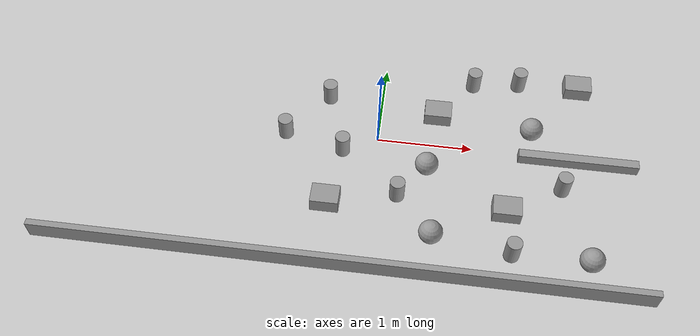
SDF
<sdf version="1.6">
 <world name="default">
  <model name="ground_plane">
   <static>1</static>
   <link name="link">
    <collision name="collision">
     <geometry><plane><normal>0 0 1</normal><size>100 100</size></plane></geometry>
     <surface>
      <contact><collide_bitmask>65535</collide_bitmask></contact>
      <friction><ode><mu>100</mu><mu2>50</mu2></ode></friction>
     </surface>
    </collision>
    <visual name="visual">
     <cast_shadows>0</cast_shadows>
     <geometry><plane><normal>0 0 1</normal><size>100 100</size></plane></geometry>
     <material>
      <script><uri>file://media/materials/scripts/gazebo.material</uri><name>Gazebo/Grey</name></script>
     </material>
    </visual>
   </link>
  </model>
  <model name="wall">
   <link name="wall::link">
    <inertial>
     <mass>1</mass>
     <inertia>
      <ixx>0.166667</ixx>
      <ixy>0</ixy>
      <ixz>0</ixz>
      <iyy>0.166667</iyy>
      <iyz>0</iyz>
      <izz>0.166667</izz>
     </inertia>
    </inertial>
    <visual name="visual">
     <geometry><box><size>6.06185 0.064282 0.203764</size></box></geometry>
     <material>
      <script><name>Gazebo/Grey</name><uri>file://media/materials/scripts/gazebo.material</uri></script>
     </material>
    </visual>
    <collision name="collision">
     <geometry><box><size>6.06185 0.064282 0.203764</size></box></geometry>
     <surface>
      <friction>
       <ode><mu>1</mu><mu2>1</mu2><fdir1>0 0 0</fdir1><slip1>0</slip1><slip2>0</slip2></ode>
       <torsional>
        <coefficient>1</coefficient>
        <patch_radius>0</patch_radius>
        <surface_radius>0</surface_radius>
        <use_patch_radius>1</use_patch_radius>
        <ode><slip>0</slip></ode>
       </torsional>
      </friction>
      <bounce><restitution_coefficient>0</restitution_coefficient><threshold>1e+06</threshold></bounce>
      <contact>
       <collide_without_contact>0</collide_without_contact>
       <collide_without_contact_bitmask>1</collide_without_contact_bitmask>
       <collide_bitmask>1</collide_bitmask>
       <ode>
        <soft_cfm>0</soft_cfm>
        <soft_erp>0.2</soft_erp>
        <kp>1e+13</kp>
        <kd>1</kd>
        <max_vel>0.01</max_vel>
        <min_depth>0</min_depth>
       </ode>
       <bullet>
        <split_impulse>1</split_impulse>
        <split_impulse_penetration_threshold>-0.01</split_impulse_penetration_threshold>
        <soft_cfm>0</soft_cfm>
        <soft_erp>0.2</soft_erp>
        <kp>1e+13</kp>
        <kd>1</kd>
       </bullet>
      </contact>
     </surface>
    </collision>
   </link>
   <static>1</static>
   <pose>-0.251992 -1.59999 0.089327 0.002776 -0.00063 0.000788</pose>
  </model>
  <model name="square_obstacle">
   <link name="link">
    <inertial>
     <mass>1</mass>
     <inertia>
      <ixx>0.166667</ixx>
      <ixy>0</ixy>
      <ixz>0</ixz>
      <iyy>0.166667</iyy>
      <iyz>0</iyz>
      <izz>0.166667</izz>
     </inertia>
    </inertial>
    <visual name="visual">
     <geometry><box><size>0.287479 0.224054 0.165392</size></box></geometry>
     <material>
      <script><name>Gazebo/Grey</name><uri>file://media/materials/scripts/gazebo.material</uri></script>
     </material>
    </visual>
    <collision name="collision">
     <geometry><box><size>0.287479 0.224054 0.165392</size></box></geometry>
     <surface>
      <friction>
       <ode><mu>1</mu><mu2>1</mu2><fdir1>0 0 0</fdir1><slip1>0</slip1><slip2>0</slip2></ode>
       <torsional>
        <coefficient>1</coefficient>
        <patch_radius>0</patch_radius>
        <surface_radius>0</surface_radius>
        <use_patch_radius>1</use_patch_radius>
        <ode><slip>0</slip></ode>
       </torsional>
      </friction>
      <bounce><restitution_coefficient>0</restitution_coefficient><threshold>1e+06</threshold></bounce>
      <contact>
       <collide_without_contact>0</collide_without_contact>
       <collide_without_contact_bitmask>1</collide_without_contact_bitmask>
       <collide_bitmask>1</collide_bitmask>
       <ode>
        <soft_cfm>0</soft_cfm>
        <soft_erp>0.2</soft_erp>
        <kp>1e+13</kp>
        <kd>1</kd>
        <max_vel>0.01</max_vel>
        <min_depth>0</min_depth>
       </ode>
       <bullet>
        <split_impulse>1</split_impulse>
        <split_impulse_penetration_threshold>-0.01</split_impulse_penetration_threshold>
        <soft_cfm>0</soft_cfm>
        <soft_erp>0.2</soft_erp>
        <kp>1e+13</kp>
        <kd>1</kd>
       </bullet>
      </contact>
     </surface>
    </collision>
   </link>
   <static>1</static>
   <pose>-0.448802 -0.865107 0.069671 0 -0 0</pose>
  </model>
  <model name="square_obstacle_clone_4">
   <link name="link">
    <inertial>
     <mass>1</mass>
     <inertia>
      <ixx>0.166667</ixx>
      <ixy>0</ixy>
      <ixz>0</ixz>
      <iyy>0.166667</iyy>
      <iyz>0</iyz>
      <izz>0.166667</izz>
     </inertia>
    </inertial>
    <visual name="visual">
     <geometry><box><size>0.287479 0.224054 0.165392</size></box></geometry>
     <material>
      <script><name>Gazebo/Grey</name><uri>file://media/materials/scripts/gazebo.material</uri></script>
     </material>
    </visual>
    <collision name="collision">
     <geometry><box><size>0.287479 0.224054 0.165392</size></box></geometry>
     <surface>
      <friction>
       <ode><mu>1</mu><mu2>1</mu2><fdir1>0 0 0</fdir1><slip1>0</slip1><slip2>0</slip2></ode>
       <torsional>
        <coefficient>1</coefficient>
        <patch_radius>0</patch_radius>
        <surface_radius>0</surface_radius>
        <use_patch_radius>1</use_patch_radius>
        <ode><slip>0</slip></ode>
       </torsional>
      </friction>
      <bounce><restitution_coefficient>0</restitution_coefficient><threshold>1e+06</threshold></bounce>
      <contact>
       <collide_without_contact>0</collide_without_contact>
       <collide_without_contact_bitmask>1</collide_without_contact_bitmask>
       <collide_bitmask>1</collide_bitmask>
       <ode>
        <soft_cfm>0</soft_cfm>
        <soft_erp>0.2</soft_erp>
        <kp>1e+13</kp>
        <kd>1</kd>
        <max_vel>0.01</max_vel>
        <min_depth>0</min_depth>
       </ode>
       <bullet>
        <split_impulse>1</split_impulse>
        <split_impulse_penetration_threshold>-0.01</split_impulse_penetration_threshold>
        <soft_cfm>0</soft_cfm>
        <soft_erp>0.2</soft_erp>
        <kp>1e+13</kp>
        <kd>1</kd>
       </bullet>
      </contact>
     </surface>
    </collision>
   </link>
   <static>1</static>
   <pose>1.37279 -0.76147 0.055043 0 -0 0</pose>
  </model>
  <model name="sphere_obstacles_clone_2">
   <link name="sphere_obstacles_clone_2::link">
    <inertial>
     <mass>1</mass>
     <inertia><ixx>0.1</ixx><ixy>0</ixy><ixz>0</ixz><iyy>0.1</iyy><iyz>0</iyz><izz>0.1</izz></inertia>
    </inertial>
    <visual name="visual">
     <geometry><sphere><radius>0.121078</radius></sphere></geometry>
     <material>
      <script><name>Gazebo/Grey</name><uri>file://media/materials/scripts/gazebo.material</uri></script>
     </material>
    </visual>
    <collision name="collision">
     <geometry><sphere><radius>0.121078</radius></sphere></geometry>
     <surface>
      <friction>
       <ode><mu>1</mu><mu2>1</mu2><fdir1>0 0 0</fdir1><slip1>0</slip1><slip2>0</slip2></ode>
       <torsional>
        <coefficient>1</coefficient>
        <patch_radius>0</patch_radius>
        <surface_radius>0</surface_radius>
        <use_patch_radius>1</use_patch_radius>
        <ode><slip>0</slip></ode>
       </torsional>
      </friction>
      <bounce><restitution_coefficient>0</restitution_coefficient><threshold>1e+06</threshold></bounce>
      <contact>
       <collide_without_contact>0</collide_without_contact>
       <collide_without_contact_bitmask>1</collide_without_contact_bitmask>
       <collide_bitmask>1</collide_bitmask>
       <ode>
        <soft_cfm>0</soft_cfm>
        <soft_erp>0.2</soft_erp>
        <kp>1e+13</kp>
        <kd>1</kd>
        <max_vel>0.01</max_vel>
        <min_depth>0</min_depth>
       </ode>
       <bullet>
        <split_impulse>1</split_impulse>
        <split_impulse_penetration_threshold>-0.01</split_impulse_penetration_threshold>
        <soft_cfm>0</soft_cfm>
        <soft_erp>0.2</soft_erp>
        <kp>1e+13</kp>
        <kd>1</kd>
       </bullet>
      </contact>
     </surface>
    </collision>
   </link>
   <static>1</static>
   <pose>1.62312 0.3049 0.0728 0 -0 0</pose>
  </model>
  <model name="sphere_obstacles_clone_2_clone_3">
   <link name="sphere_obstacles_clone_2::link">
    <inertial>
     <mass>1</mass>
     <inertia><ixx>0.1</ixx><ixy>0</ixy><ixz>0</ixz><iyy>0.1</iyy><iyz>0</iyz><izz>0.1</izz></inertia>
    </inertial>
    <visual name="visual">
     <geometry><sphere><radius>0.121078</radius></sphere></geometry>
     <material>
      <script><name>Gazebo/Grey</name><uri>file://media/materials/scripts/gazebo.material</uri></script>
     </material>
    </visual>
    <collision name="collision">
     <geometry><sphere><radius>0.121078</radius></sphere></geometry>
     <surface>
      <friction>
       <ode><mu>1</mu><mu2>1</mu2><fdir1>0 0 0</fdir1><slip1>0</slip1><slip2>0</slip2></ode>
       <torsional>
        <coefficient>1</coefficient>
        <patch_radius>0</patch_radius>
        <surface_radius>0</surface_radius>
        <use_patch_radius>1</use_patch_radius>
        <ode><slip>0</slip></ode>
       </torsional>
      </friction>
      <bounce><restitution_coefficient>0</restitution_coefficient><threshold>1e+06</threshold></bounce>
      <contact>
       <collide_without_contact>0</collide_without_contact>
       <collide_without_contact_bitmask>1</collide_without_contact_bitmask>
       <collide_bitmask>1</collide_bitmask>
       <ode>
        <soft_cfm>0</soft_cfm>
        <soft_erp>0.2</soft_erp>
        <kp>1e+13</kp>
        <kd>1</kd>
        <max_vel>0.01</max_vel>
        <min_depth>0</min_depth>
       </ode>
       <bullet>
        <split_impulse>1</split_impulse>
        <split_impulse_penetration_threshold>-0.01</split_impulse_penetration_threshold>
        <soft_cfm>0</soft_cfm>
        <soft_erp>0.2</soft_erp>
        <kp>1e+13</kp>
        <kd>1</kd>
       </bullet>
      </contact>
     </surface>
    </collision>
   </link>
   <static>1</static>
   <pose>0.539291 -0.300448 0.0728 0 -0 0</pose>
  </model>
  <model name="sphere_obstacles_clone_2_clone_5">
   <link name="sphere_obstacles_clone_2::link">
    <inertial>
     <mass>1</mass>
     <inertia><ixx>0.1</ixx><ixy>0</ixy><ixz>0</ixz><iyy>0.1</iyy><iyz>0</iyz><izz>0.1</izz></inertia>
    </inertial>
    <visual name="visual">
     <geometry><sphere><radius>0.121078</radius></sphere></geometry>
     <material>
      <script><name>Gazebo/Grey</name><uri>file://media/materials/scripts/gazebo.material</uri></script>
     </material>
    </visual>
    <collision name="collision">
     <geometry><sphere><radius>0.121078</radius></sphere></geometry>
     <surface>
      <friction>
       <ode><mu>1</mu><mu2>1</mu2><fdir1>0 0 0</fdir1><slip1>0</slip1><slip2>0</slip2></ode>
       <torsional>
        <coefficient>1</coefficient>
        <patch_radius>0</patch_radius>
        <surface_radius>0</surface_radius>
        <use_patch_radius>1</use_patch_radius>
        <ode><slip>0</slip></ode>
       </torsional>
      </friction>
      <bounce><restitution_coefficient>0</restitution_coefficient><threshold>1e+06</threshold></bounce>
      <contact>
       <collide_without_contact>0</collide_without_contact>
       <collide_without_contact_bitmask>1</collide_without_contact_bitmask>
       <collide_bitmask>1</collide_bitmask>
       <ode>
        <soft_cfm>0</soft_cfm>
        <soft_erp>0.2</soft_erp>
        <kp>1e+13</kp>
        <kd>1</kd>
        <max_vel>0.01</max_vel>
        <min_depth>0</min_depth>
       </ode>
       <bullet>
        <split_impulse>1</split_impulse>
        <split_impulse_penetration_threshold>-0.01</split_impulse_penetration_threshold>
        <soft_cfm>0</soft_cfm>
        <soft_erp>0.2</soft_erp>
        <kp>1e+13</kp>
        <kd>1</kd>
       </bullet>
      </contact>
     </surface>
    </collision>
   </link>
   <static>1</static>
   <pose>2.19214 -1.24737 0.0728 0 -0 0</pose>
  </model>
  <model name="square_obstacle_clone_4_clone_clone_1">
   <link name="link">
    <inertial>
     <mass>1</mass>
     <inertia>
      <ixx>0.166667</ixx>
      <ixy>0</ixy>
      <ixz>0</ixz>
      <iyy>0.166667</iyy>
      <iyz>0</iyz>
      <izz>0.166667</izz>
     </inertia>
    </inertial>
    <visual name="visual">
     <geometry><box><size>0.287479 0.224054 0.165392</size></box></geometry>
     <material>
      <script><name>Gazebo/Grey</name><uri>file://media/materials/scripts/gazebo.material</uri></script>
     </material>
    </visual>
    <collision name="collision">
     <geometry><box><size>0.287479 0.224054 0.165392</size></box></geometry>
     <surface>
      <friction>
       <ode><mu>1</mu><mu2>1</mu2><fdir1>0 0 0</fdir1><slip1>0</slip1><slip2>0</slip2></ode>
       <torsional>
        <coefficient>1</coefficient>
        <patch_radius>0</patch_radius>
        <surface_radius>0</surface_radius>
        <use_patch_radius>1</use_patch_radius>
        <ode><slip>0</slip></ode>
       </torsional>
      </friction>
      <bounce><restitution_coefficient>0</restitution_coefficient><threshold>1e+06</threshold></bounce>
      <contact>
       <collide_without_contact>0</collide_without_contact>
       <collide_without_contact_bitmask>1</collide_without_contact_bitmask>
       <collide_bitmask>1</collide_bitmask>
       <ode>
        <soft_cfm>0</soft_cfm>
        <soft_erp>0.2</soft_erp>
        <kp>1e+13</kp>
        <kd>1</kd>
        <max_vel>0.01</max_vel>
        <min_depth>0</min_depth>
       </ode>
       <bullet>
        <split_impulse>1</split_impulse>
        <split_impulse_penetration_threshold>-0.01</split_impulse_penetration_threshold>
        <soft_cfm>0</soft_cfm>
        <soft_erp>0.2</soft_erp>
        <kp>1e+13</kp>
        <kd>1</kd>
       </bullet>
      </contact>
     </surface>
    </collision>
   </link>
   <static>1</static>
   <pose>0.613197 0.412823 0.055043 0 -0 0</pose>
  </model>
  <model name="square_obstacle_clone_4_clone_clone_3">
   <link name="link">
    <inertial>
     <mass>1</mass>
     <inertia>
      <ixx>0.166667</ixx>
      <ixy>0</ixy>
      <ixz>0</ixz>
      <iyy>0.166667</iyy>
      <iyz>0</iyz>
      <izz>0.166667</izz>
     </inertia>
    </inertial>
    <visual name="visual">
     <geometry><box><size>0.287479 0.224054 0.165392</size></box></geometry>
     <material>
      <script><name>Gazebo/Grey</name><uri>file://media/materials/scripts/gazebo.material</uri></script>
     </material>
    </visual>
    <collision name="collision">
     <geometry><box><size>0.287479 0.224054 0.165392</size></box></geometry>
     <surface>
      <friction>
       <ode><mu>1</mu><mu2>1</mu2><fdir1>0 0 0</fdir1><slip1>0</slip1><slip2>0</slip2></ode>
       <torsional>
        <coefficient>1</coefficient>
        <patch_radius>0</patch_radius>
        <surface_radius>0</surface_radius>
        <use_patch_radius>1</use_patch_radius>
        <ode><slip>0</slip></ode>
       </torsional>
      </friction>
      <bounce><restitution_coefficient>0</restitution_coefficient><threshold>1e+06</threshold></bounce>
      <contact>
       <collide_without_contact>0</collide_without_contact>
       <collide_without_contact_bitmask>1</collide_without_contact_bitmask>
       <collide_bitmask>1</collide_bitmask>
       <ode>
        <soft_cfm>0</soft_cfm>
        <soft_erp>0.2</soft_erp>
        <kp>1e+13</kp>
        <kd>1</kd>
        <max_vel>0.01</max_vel>
        <min_depth>0</min_depth>
       </ode>
       <bullet>
        <split_impulse>1</split_impulse>
        <split_impulse_penetration_threshold>-0.01</split_impulse_penetration_threshold>
        <soft_cfm>0</soft_cfm>
        <soft_erp>0.2</soft_erp>
        <kp>1e+13</kp>
        <kd>1</kd>
       </bullet>
      </contact>
     </surface>
    </collision>
   </link>
   <static>1</static>
   <pose>2.13153 0.985228 0.055043 0 -0 0</pose>
  </model>
  <model name="cylinder_obstacles_clone_0">
   <link name="link">
    <inertial>
     <mass>1</mass>
     <inertia><ixx>0.145833</ixx><ixy>0</ixy><ixz>0</ixz><iyy>0.145833</iyy><iyz>0</iyz><izz>0.125</izz></inertia>
    </inertial>
    <visual name="visual">
     <geometry><cylinder><radius>0.076548</radius><length>0.26008</length></cylinder></geometry>
     <material>
      <script><name>Gazebo/Grey</name><uri>file://media/materials/scripts/gazebo.material</uri></script>
     </material>
    </visual>
    <collision name="collision">
     <geometry><cylinder><radius>0.076548</radius><length>0.26008</length></cylinder></geometry>
     <surface>
      <friction>
       <ode><mu>1</mu><mu2>1</mu2><fdir1>0 0 0</fdir1><slip1>0</slip1><slip2>0</slip2></ode>
       <torsional>
        <coefficient>1</coefficient>
        <patch_radius>0</patch_radius>
        <surface_radius>0</surface_radius>
        <use_patch_radius>1</use_patch_radius>
        <ode><slip>0</slip></ode>
       </torsional>
      </friction>
      <bounce><restitution_coefficient>0</restitution_coefficient><threshold>1e+06</threshold></bounce>
      <contact>
       <collide_without_contact>0</collide_without_contact>
       <collide_without_contact_bitmask>1</collide_without_contact_bitmask>
       <collide_bitmask>1</collide_bitmask>
       <ode>
        <soft_cfm>0</soft_cfm>
        <soft_erp>0.2</soft_erp>
        <kp>1e+13</kp>
        <kd>1</kd>
        <max_vel>0.01</max_vel>
        <min_depth>0</min_depth>
       </ode>
       <bullet>
        <split_impulse>1</split_impulse>
        <split_impulse_penetration_threshold>-0.01</split_impulse_penetration_threshold>
        <soft_cfm>0</soft_cfm>
        <soft_erp>0.2</soft_erp>
        <kp>1e+13</kp>
        <kd>1</kd>
       </bullet>
      </contact>
     </surface>
    </collision>
   </link>
   <static>1</static>
   <pose>-0.584571 0.519777 0.110032 0 -0 0</pose>
  </model>
  <model name="cylinder_obstacles_clone_3">
   <link name="link">
    <inertial>
     <mass>1</mass>
     <inertia><ixx>0.145833</ixx><ixy>0</ixy><ixz>0</ixz><iyy>0.145833</iyy><iyz>0</iyz><izz>0.125</izz></inertia>
    </inertial>
    <visual name="visual">
     <geometry><cylinder><radius>0.076548</radius><length>0.26008</length></cylinder></geometry>
     <material>
      <script><name>Gazebo/Grey</name><uri>file://media/materials/scripts/gazebo.material</uri></script>
     </material>
    </visual>
    <collision name="collision">
     <geometry><cylinder><radius>0.076548</radius><length>0.26008</length></cylinder></geometry>
     <surface>
      <friction>
       <ode><mu>1</mu><mu2>1</mu2><fdir1>0 0 0</fdir1><slip1>0</slip1><slip2>0</slip2></ode>
       <torsional>
        <coefficient>1</coefficient>
        <patch_radius>0</patch_radius>
        <surface_radius>0</surface_radius>
        <use_patch_radius>1</use_patch_radius>
        <ode><slip>0</slip></ode>
       </torsional>
      </friction>
      <bounce><restitution_coefficient>0</restitution_coefficient><threshold>1e+06</threshold></bounce>
      <contact>
       <collide_without_contact>0</collide_without_contact>
       <collide_without_contact_bitmask>1</collide_without_contact_bitmask>
       <collide_bitmask>1</collide_bitmask>
       <ode>
        <soft_cfm>0</soft_cfm>
        <soft_erp>0.2</soft_erp>
        <kp>1e+13</kp>
        <kd>1</kd>
        <max_vel>0.01</max_vel>
        <min_depth>0</min_depth>
       </ode>
       <bullet>
        <split_impulse>1</split_impulse>
        <split_impulse_penetration_threshold>-0.01</split_impulse_penetration_threshold>
        <soft_cfm>0</soft_cfm>
        <soft_erp>0.2</soft_erp>
        <kp>1e+13</kp>
        <kd>1</kd>
       </bullet>
      </contact>
     </surface>
    </collision>
   </link>
   <static>1</static>
   <pose>0.983823 0.898585 0.110032 0 -0 0</pose>
  </model>
  <model name="cylinder_obstacles_clone_4">
   <link name="link">
    <inertial>
     <mass>1</mass>
     <inertia><ixx>0.145833</ixx><ixy>0</ixy><ixz>0</ixz><iyy>0.145833</iyy><iyz>0</iyz><izz>0.125</izz></inertia>
    </inertial>
    <visual name="visual">
     <geometry><cylinder><radius>0.076548</radius><length>0.26008</length></cylinder></geometry>
     <material>
      <script><name>Gazebo/Grey</name><uri>file://media/materials/scripts/gazebo.material</uri></script>
     </material>
    </visual>
    <collision name="collision">
     <geometry><cylinder><radius>0.076548</radius><length>0.26008</length></cylinder></geometry>
     <surface>
      <friction>
       <ode><mu>1</mu><mu2>1</mu2><fdir1>0 0 0</fdir1><slip1>0</slip1><slip2>0</slip2></ode>
       <torsional>
        <coefficient>1</coefficient>
        <patch_radius>0</patch_radius>
        <surface_radius>0</surface_radius>
        <use_patch_radius>1</use_patch_radius>
        <ode><slip>0</slip></ode>
       </torsional>
      </friction>
      <bounce><restitution_coefficient>0</restitution_coefficient><threshold>1e+06</threshold></bounce>
      <contact>
       <collide_without_contact>0</collide_without_contact>
       <collide_without_contact_bitmask>1</collide_without_contact_bitmask>
       <collide_bitmask>1</collide_bitmask>
       <ode>
        <soft_cfm>0</soft_cfm>
        <soft_erp>0.2</soft_erp>
        <kp>1e+13</kp>
        <kd>1</kd>
        <max_vel>0.01</max_vel>
        <min_depth>0</min_depth>
       </ode>
       <bullet>
        <split_impulse>1</split_impulse>
        <split_impulse_penetration_threshold>-0.01</split_impulse_penetration_threshold>
        <soft_cfm>0</soft_cfm>
        <soft_erp>0.2</soft_erp>
        <kp>1e+13</kp>
        <kd>1</kd>
       </bullet>
      </contact>
     </surface>
    </collision>
   </link>
   <static>1</static>
   <pose>1.9338 -0.420018 0.110032 0 -0 0</pose>
  </model>
  <model name="cylinder_obstacles_clone_9">
   <link name="link">
    <inertial>
     <mass>1</mass>
     <inertia><ixx>0.145833</ixx><ixy>0</ixy><ixz>0</ixz><iyy>0.145833</iyy><iyz>0</iyz><izz>0.125</izz></inertia>
    </inertial>
    <visual name="visual">
     <geometry><cylinder><radius>0.076548</radius><length>0.26008</length></cylinder></geometry>
     <material>
      <script><name>Gazebo/Grey</name><uri>file://media/materials/scripts/gazebo.material</uri></script>
     </material>
    </visual>
    <collision name="collision">
     <geometry><cylinder><radius>0.076548</radius><length>0.26008</length></cylinder></geometry>
     <surface>
      <friction>
       <ode><mu>1</mu><mu2>1</mu2><fdir1>0 0 0</fdir1><slip1>0</slip1><slip2>0</slip2></ode>
       <torsional>
        <coefficient>1</coefficient>
        <patch_radius>0</patch_radius>
        <surface_radius>0</surface_radius>
        <use_patch_radius>1</use_patch_radius>
        <ode><slip>0</slip></ode>
       </torsional>
      </friction>
      <bounce><restitution_coefficient>0</restitution_coefficient><threshold>1e+06</threshold></bounce>
      <contact>
       <collide_without_contact>0</collide_without_contact>
       <collide_without_contact_bitmask>1</collide_without_contact_bitmask>
       <collide_bitmask>1</collide_bitmask>
       <ode>
        <soft_cfm>0</soft_cfm>
        <soft_erp>0.2</soft_erp>
        <kp>1e+13</kp>
        <kd>1</kd>
        <max_vel>0.01</max_vel>
        <min_depth>0</min_depth>
       </ode>
       <bullet>
        <split_impulse>1</split_impulse>
        <split_impulse_penetration_threshold>-0.01</split_impulse_penetration_threshold>
        <soft_cfm>0</soft_cfm>
        <soft_erp>0.2</soft_erp>
        <kp>1e+13</kp>
        <kd>1</kd>
       </bullet>
      </contact>
     </surface>
    </collision>
   </link>
   <static>1</static>
   <pose>-0.991495 -0.030722 0.110032 0 -0 0</pose>
  </model>
  <model name="long_obstacle_clone_0">
   <link name="link">
    <inertial>
     <mass>1</mass>
     <inertia>
      <ixx>0.166667</ixx>
      <ixy>0</ixy>
      <ixz>0</ixz>
      <iyy>0.166667</iyy>
      <iyz>0</iyz>
      <izz>0.166667</izz>
     </inertia>
    </inertial>
    <visual name="visual">
     <geometry><box><size>1.23514 0.097707 0.121659</size></box></geometry>
     <material>
      <script><name>Gazebo/Grey</name><uri>file://media/materials/scripts/gazebo.material</uri></script>
     </material>
    </visual>
    <collision name="collision">
     <geometry><box><size>1.23514 0.097707 0.121659</size></box></geometry>
     <surface>
      <friction>
       <ode><mu>1</mu><mu2>1</mu2><fdir1>0 0 0</fdir1><slip1>0</slip1><slip2>0</slip2></ode>
       <torsional>
        <coefficient>1</coefficient>
        <patch_radius>0</patch_radius>
        <surface_radius>0</surface_radius>
        <use_patch_radius>1</use_patch_radius>
        <ode><slip>0</slip></ode>
       </torsional>
      </friction>
      <bounce><restitution_coefficient>0</restitution_coefficient><threshold>1e+06</threshold></bounce>
      <contact>
       <collide_without_contact>0</collide_without_contact>
       <collide_without_contact_bitmask>1</collide_without_contact_bitmask>
       <collide_bitmask>1</collide_bitmask>
       <ode>
        <soft_cfm>0</soft_cfm>
        <soft_erp>0.2</soft_erp>
        <kp>1e+13</kp>
        <kd>1</kd>
        <max_vel>0.01</max_vel>
        <min_depth>0</min_depth>
       </ode>
       <bullet>
        <split_impulse>1</split_impulse>
        <split_impulse_penetration_threshold>-0.01</split_impulse_penetration_threshold>
        <soft_cfm>0</soft_cfm>
        <soft_erp>0.2</soft_erp>
        <kp>1e+13</kp>
        <kd>1</kd>
       </bullet>
      </contact>
     </surface>
    </collision>
   </link>
   <static>1</static>
   <pose>2.10308 -0.053252 0.044707 0 -0 0</pose>
  </model>
  <model name="cylinder_obstacles_clone_3_clone">
   <link name="link">
    <inertial>
     <mass>1</mass>
     <inertia><ixx>0.145833</ixx><ixy>0</ixy><ixz>0</ixz><iyy>0.145833</iyy><iyz>0</iyz><izz>0.125</izz></inertia>
    </inertial>
    <visual name="visual">
     <geometry><cylinder><radius>0.076548</radius><length>0.26008</length></cylinder></geometry>
     <material>
      <script><name>Gazebo/Grey</name><uri>file://media/materials/scripts/gazebo.material</uri></script>
     </material>
    </visual>
    <collision name="collision">
     <geometry><cylinder><radius>0.076548</radius><length>0.26008</length></cylinder></geometry>
     <surface>
      <friction>
       <ode><mu>1</mu><mu2>1</mu2><fdir1>0 0 0</fdir1><slip1>0</slip1><slip2>0</slip2></ode>
       <torsional>
        <coefficient>1</coefficient>
        <patch_radius>0</patch_radius>
        <surface_radius>0</surface_radius>
        <use_patch_radius>1</use_patch_radius>
        <ode><slip>0</slip></ode>
       </torsional>
      </friction>
      <bounce><restitution_coefficient>0</restitution_coefficient><threshold>1e+06</threshold></bounce>
      <contact>
       <collide_without_contact>0</collide_without_contact>
       <collide_without_contact_bitmask>1</collide_without_contact_bitmask>
       <collide_bitmask>1</collide_bitmask>
       <ode>
        <soft_cfm>0</soft_cfm>
        <soft_erp>0.2</soft_erp>
        <kp>1e+13</kp>
        <kd>1</kd>
        <max_vel>0.01</max_vel>
        <min_depth>0</min_depth>
       </ode>
       <bullet>
        <split_impulse>1</split_impulse>
        <split_impulse_penetration_threshold>-0.01</split_impulse_penetration_threshold>
        <soft_cfm>0</soft_cfm>
        <soft_erp>0.2</soft_erp>
        <kp>1e+13</kp>
        <kd>1</kd>
       </bullet>
      </contact>
     </surface>
    </collision>
   </link>
   <static>1</static>
   <pose>1.42851 -1.2555 0.110032 0 -0 0</pose>
  </model>
  <model name="cylinder_obstacles_clone_3_clone_0">
   <link name="link">
    <inertial>
     <mass>1</mass>
     <inertia><ixx>0.145833</ixx><ixy>0</ixy><ixz>0</ixz><iyy>0.145833</iyy><iyz>0</iyz><izz>0.125</izz></inertia>
    </inertial>
    <visual name="visual">
     <geometry><cylinder><radius>0.076548</radius><length>0.26008</length></cylinder></geometry>
     <material>
      <script><name>Gazebo/Grey</name><uri>file://media/materials/scripts/gazebo.material</uri></script>
     </material>
    </visual>
    <collision name="collision">
     <geometry><cylinder><radius>0.076548</radius><length>0.26008</length></cylinder></geometry>
     <surface>
      <friction>
       <ode><mu>1</mu><mu2>1</mu2><fdir1>0 0 0</fdir1><slip1>0</slip1><slip2>0</slip2></ode>
       <torsional>
        <coefficient>1</coefficient>
        <patch_radius>0</patch_radius>
        <surface_radius>0</surface_radius>
        <use_patch_radius>1</use_patch_radius>
        <ode><slip>0</slip></ode>
       </torsional>
      </friction>
      <bounce><restitution_coefficient>0</restitution_coefficient><threshold>1e+06</threshold></bounce>
      <contact>
       <collide_without_contact>0</collide_without_contact>
       <collide_without_contact_bitmask>1</collide_without_contact_bitmask>
       <collide_bitmask>1</collide_bitmask>
       <ode>
        <soft_cfm>0</soft_cfm>
        <soft_erp>0.2</soft_erp>
        <kp>1e+13</kp>
        <kd>1</kd>
        <max_vel>0.01</max_vel>
        <min_depth>0</min_depth>
       </ode>
       <bullet>
        <split_impulse>1</split_impulse>
        <split_impulse_penetration_threshold>-0.01</split_impulse_penetration_threshold>
        <soft_cfm>0</soft_cfm>
        <soft_erp>0.2</soft_erp>
        <kp>1e+13</kp>
        <kd>1</kd>
       </bullet>
      </contact>
     </surface>
    </collision>
   </link>
   <static>1</static>
   <pose>0.263794 -0.69754 0.110032 0 -0 0</pose>
  </model>
  <model name="cylinder_obstacles_clone_3_clone_1">
   <link name="link">
    <inertial>
     <mass>1</mass>
     <inertia><ixx>0.145833</ixx><ixy>0</ixy><ixz>0</ixz><iyy>0.145833</iyy><iyz>0</iyz><izz>0.125</izz></inertia>
    </inertial>
    <visual name="visual">
     <geometry><cylinder><radius>0.076548</radius><length>0.26008</length></cylinder></geometry>
     <material>
      <script><name>Gazebo/Grey</name><uri>file://media/materials/scripts/gazebo.material</uri></script>
     </material>
    </visual>
    <collision name="collision">
     <geometry><cylinder><radius>0.076548</radius><length>0.26008</length></cylinder></geometry>
     <surface>
      <friction>
       <ode><mu>1</mu><mu2>1</mu2><fdir1>0 0 0</fdir1><slip1>0</slip1><slip2>0</slip2></ode>
       <torsional>
        <coefficient>1</coefficient>
        <patch_radius>0</patch_radius>
        <surface_radius>0</surface_radius>
        <use_patch_radius>1</use_patch_radius>
        <ode><slip>0</slip></ode>
       </torsional>
      </friction>
      <bounce><restitution_coefficient>0</restitution_coefficient><threshold>1e+06</threshold></bounce>
      <contact>
       <collide_without_contact>0</collide_without_contact>
       <collide_without_contact_bitmask>1</collide_without_contact_bitmask>
       <collide_bitmask>1</collide_bitmask>
       <ode>
        <soft_cfm>0</soft_cfm>
        <soft_erp>0.2</soft_erp>
        <kp>1e+13</kp>
        <kd>1</kd>
        <max_vel>0.01</max_vel>
        <min_depth>0</min_depth>
       </ode>
       <bullet>
        <split_impulse>1</split_impulse>
        <split_impulse_penetration_threshold>-0.01</split_impulse_penetration_threshold>
        <soft_cfm>0</soft_cfm>
        <soft_erp>0.2</soft_erp>
        <kp>1e+13</kp>
        <kd>1</kd>
       </bullet>
      </contact>
     </surface>
    </collision>
   </link>
   <static>1</static>
   <pose>-0.358054 -0.190671 0.110032 0 -0 0</pose>
  </model>
  <model name="cylinder_obstacles_clone_3_clone_2">
   <link name="link">
    <inertial>
     <mass>1</mass>
     <inertia><ixx>0.145833</ixx><ixy>0</ixy><ixz>0</ixz><iyy>0.145833</iyy><iyz>0</iyz><izz>0.125</izz></inertia>
    </inertial>
    <visual name="visual">
     <geometry><cylinder><radius>0.076548</radius><length>0.26008</length></cylinder></geometry>
     <material>
      <script><name>Gazebo/Grey</name><uri>file://media/materials/scripts/gazebo.material</uri></script>
     </material>
    </visual>
    <collision name="collision">
     <geometry><cylinder><radius>0.076548</radius><length>0.26008</length></cylinder></geometry>
     <surface>
      <friction>
       <ode><mu>1</mu><mu2>1</mu2><fdir1>0 0 0</fdir1><slip1>0</slip1><slip2>0</slip2></ode>
       <torsional>
        <coefficient>1</coefficient>
        <patch_radius>0</patch_radius>
        <surface_radius>0</surface_radius>
        <use_patch_radius>1</use_patch_radius>
        <ode><slip>0</slip></ode>
       </torsional>
      </friction>
      <bounce><restitution_coefficient>0</restitution_coefficient><threshold>1e+06</threshold></bounce>
      <contact>
       <collide_without_contact>0</collide_without_contact>
       <collide_without_contact_bitmask>1</collide_without_contact_bitmask>
       <collide_bitmask>1</collide_bitmask>
       <ode>
        <soft_cfm>0</soft_cfm>
        <soft_erp>0.2</soft_erp>
        <kp>1e+13</kp>
        <kd>1</kd>
        <max_vel>0.01</max_vel>
        <min_depth>0</min_depth>
       </ode>
       <bullet>
        <split_impulse>1</split_impulse>
        <split_impulse_penetration_threshold>-0.01</split_impulse_penetration_threshold>
        <soft_cfm>0</soft_cfm>
        <soft_erp>0.2</soft_erp>
        <kp>1e+13</kp>
        <kd>1</kd>
       </bullet>
      </contact>
     </surface>
    </collision>
   </link>
   <static>1</static>
   <pose>1.48354 0.968489 0.110032 0 -0 0</pose>
  </model>
  <model name="sphere_obstacles_clone_2_clone_3_clone_1">
   <link name="sphere_obstacles_clone_2::link">
    <inertial>
     <mass>1</mass>
     <inertia><ixx>0.1</ixx><ixy>0</ixy><ixz>0</ixz><iyy>0.1</iyy><iyz>0</iyz><izz>0.1</izz></inertia>
    </inertial>
    <visual name="visual">
     <geometry><sphere><radius>0.121078</radius></sphere></geometry>
     <material>
      <script><name>Gazebo/Grey</name><uri>file://media/materials/scripts/gazebo.material</uri></script>
     </material>
    </visual>
    <collision name="collision">
     <geometry><sphere><radius>0.121078</radius></sphere></geometry>
     <surface>
      <friction>
       <ode><mu>1</mu><mu2>1</mu2><fdir1>0 0 0</fdir1><slip1>0</slip1><slip2>0</slip2></ode>
       <torsional>
        <coefficient>1</coefficient>
        <patch_radius>0</patch_radius>
        <surface_radius>0</surface_radius>
        <use_patch_radius>1</use_patch_radius>
        <ode><slip>0</slip></ode>
       </torsional>
      </friction>
      <bounce><restitution_coefficient>0</restitution_coefficient><threshold>1e+06</threshold></bounce>
      <contact>
       <collide_without_contact>0</collide_without_contact>
       <collide_without_contact_bitmask>1</collide_without_contact_bitmask>
       <collide_bitmask>1</collide_bitmask>
       <ode>
        <soft_cfm>0</soft_cfm>
        <soft_erp>0.2</soft_erp>
        <kp>1e+13</kp>
        <kd>1</kd>
        <max_vel>0.01</max_vel>
        <min_depth>0</min_depth>
       </ode>
       <bullet>
        <split_impulse>1</split_impulse>
        <split_impulse_penetration_threshold>-0.01</split_impulse_penetration_threshold>
        <soft_cfm>0</soft_cfm>
        <soft_erp>0.2</soft_erp>
        <kp>1e+13</kp>
        <kd>1</kd>
       </bullet>
      </contact>
     </surface>
    </collision>
   </link>
   <static>1</static>
   <pose>0.634753 -1.13122 0.0728 0 -0 0</pose>
  </model>
 </world>
</sdf>
